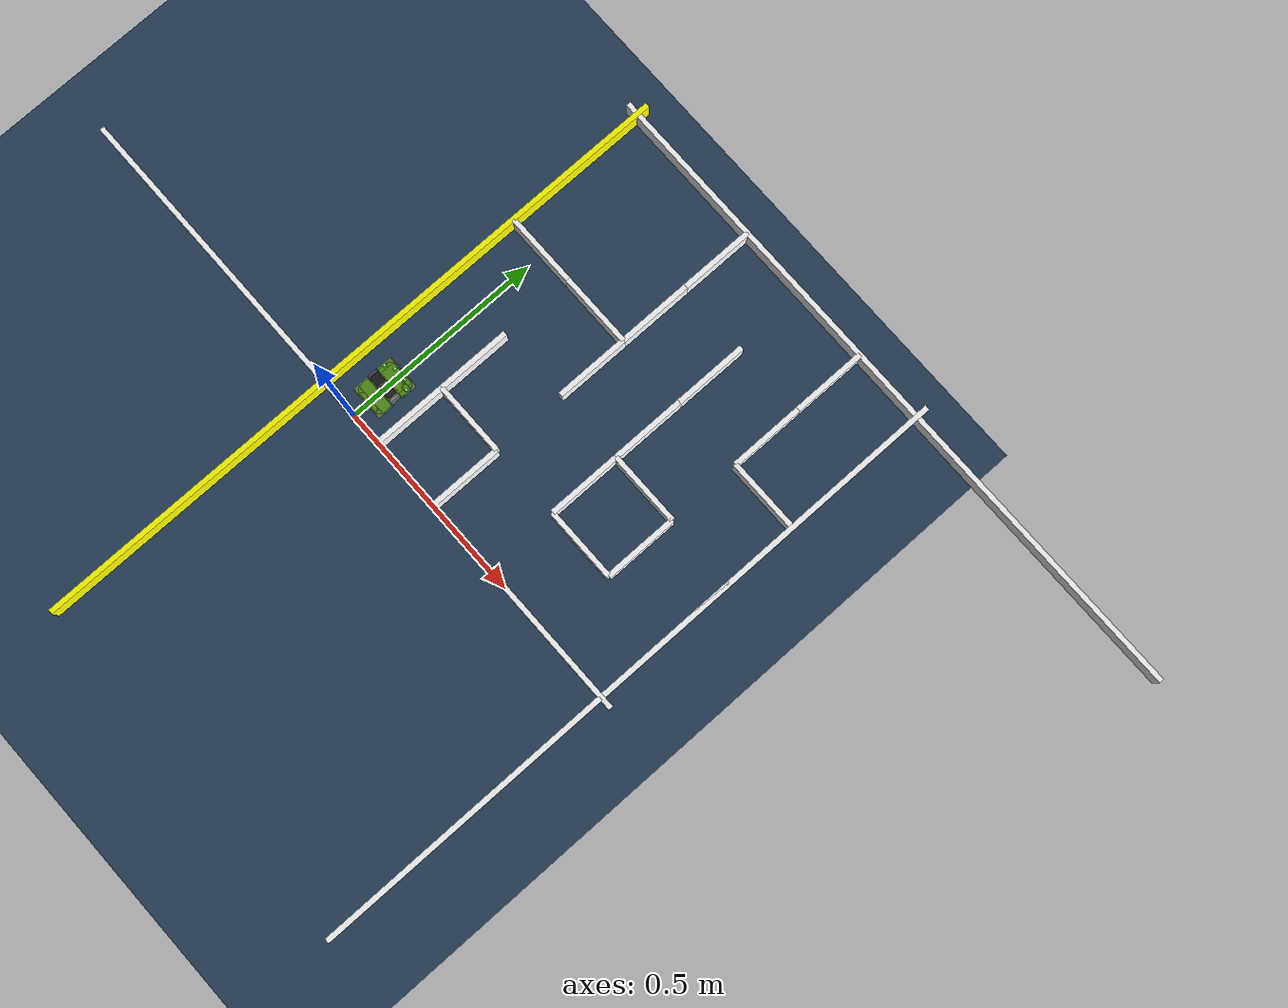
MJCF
<mujoco>
<compiler angle="degree" coordinate="local" inertiafromgeom="true" />
    <option integrator="RK4" timestep="0.001" />
    <asset>
        <texture type="skybox" builtin="gradient" rgb1="0.3 0.5 0.7" rgb2="0 0 0" width="512" height="3072"/>
        <texture type="2d" name="groundplane" builtin="checker" mark="edge" rgb1="0.2 0.3 0.4" rgb2="0.1 0.2 0.3" markrgb="0.8 0.8 0.8" width="300" height="300"/>
        <material name="groundplane" texture="groundplane" texuniform="true" texrepeat="5 5" reflectance="0.2"/>
    </asset>

    <worldbody>
        <light diffuse=".5 .5 .5" pos="0 0 10" dir="0 0 -1"/>
        <geom type="plane" size="1 1 .01" material="groundplane"/>

         <body pos="0.0 0.09 0.007" euler="0 0 90">
            <freejoint />
            <body name="torso">
                <geom name="mein_body1" type="box" friction="0.0 0.0 0.0" size="0.05 0.03 0.0008" rgba="0.05 0.4 0.15 1" pos="0 0 0.002" mass="4.65e-3"/>
                <geom name="mein_body_chip1" type="box" friction="0.0 0.0 0.0" size="0.00707 0.00707 0.0008" rgba="0.05 0.4 0.15 1" pos="0.04 0.03 0.002" euler="0 0 45" mass="4.65e-3"/>
                <geom name="mein_body_chip2" type="box" friction="0.0 0.0 0.0" size="0.00707 0.00707 0.0008" rgba="0.05 0.4 0.15 1" pos="0.04 -0.03 0.002" euler="0 0 45" mass="4.65e-3"/>
                <geom name="mein_body_chip3" type="box" friction="0.0 0.0 0.0" size="0.00707 0.00707 0.0008" rgba="0.05 0.4 0.15 1" pos="-0.04 0.03 0.002" euler="0 0 45" mass="4.65e-3"/>
                <geom name="mein_body_chip4" type="box" friction="0.0 0.0 0.0" size="0.00707 0.00707 0.0008" rgba="0.05 0.4 0.15 1" pos="-0.04 -0.03 0.002" euler="0 0 45" mass="4.65e-3"/>
                <geom name="mein_body4" type="box" friction="0.0 0.0 0.0" size="0.013 0.04 0.0008"  rgba="0.05 0.4 0.15 1" pos="-0.027 0 0.002" mass="4.65e-3"/>
                <geom name="mein_body5" type="box" friction="0.0 0.0 0.0" size="0.013 0.04 0.0008"  rgba="0.05 0.4 0.15 1" pos="0.027 0 0.002" mass="4.65e-3"/>
                <!--接触判定領域（この中に入ってるgeomが接触すると，センサ値としてその値を取得できる）-->
                <site name = "hit_box1" type = "box" size = "0.02 0.043 0.00078" pos="0.033 0 0.003" rgba="1 1 0 0.3"/>
                <site name = "hit_box2" type = "box" size = "0.02 0.043 0.00078" pos="-0.033 0 0.003" rgba="1 1 0 0.3"/>
            </body>

            <site name="sensor_left_front" type="box" size="0.003 0.003 0.003" pos="0.031 0.036 0.01" zaxis="1 0 0.01" rgba=".5 1 .5 1"/>
              <!-- zaxisの３つめ　0.1でちょい上向き -->
            <site name="sensor_left_side" type="box" size="0.003 0.003 0.003" pos="0.043 0.016 0.01" zaxis="0.25 1 0" rgba=".5 1 .5 1"/>
            <site name="sensor_right_front" type="box" size="0.003 0.003 0.003" pos="0.031 -0.036 0.01" zaxis="1 0 0.01" rgba=".5 1 .5 1"/>
            <site name="sensor_right_side" type="box" size="0.003 0.003 0.003" pos="0.043 -0.016 0.01" zaxis="0.25 -1 0" rgba=".5 1 .5 1"/>
            <site name="accerometer" type="sphere" size="0.001 0.001" pos="0 0 0.0"/>
            <site name="gyro" type="box" size="0.001 0.001 0.001" pos="0 0 0"/>
            <site name="velocimeter" type="box" size="0.001 0.001 0.001" pos="0 0 0"/>

             <body name="left wheel" pos="-0.0 0.036 0.0135" zaxis="0 1 0">
                <joint name="left wheel joint" type="hinge" axis="0 0 1" limited="false" damping='9.6e-5' />
                <geom name="left_wheel" type="cylinder" size="0.0135 0.0035" friction="1.0 0 0"  rgba=".3 .3 0.3 1" mass="5e-3"/>
                <site type="box" size = "0.0012 0.008 0.004" rgba=".5 1 .5 1"/>
            </body>

            <body name="right wheel" pos="-0.0 -0.036 0.0135" zaxis="0 1 0">
                <joint name="right wheel joint" type="hinge" axis="0 0 1" limited="false" damping='9.6e-5' />
                <geom type="cylinder" size="0.0135 0.0035" friction="1.0 0 0" mass="5e-3"/> #直径27mmのタイヤ
                <site type="box" size = "0.0012 0.008 0.004" rgba=".5 1 .5 1"/>
            </body>

            <body name="motorbox1" pos="0 -0.018 0.0135" >
                <geom type="box" size="0.0117 0.0135 0.0117" rgba="0.1 0.1 0.1 1" mass="50e-3"/>
            </body>

            <body name="motorbox2" pos="0 0.018 0.0135">
                <geom type="box" size="0.0117 0.0135 0.0117" rgba="0.1 0.1 0.1 1" mass="50e-3"/>
            </body>

            <!--トラッキングカメラを装着-->
            <camera name="camera_name" mode="track" pos="-0.4 0 0.8" euler="0 -30 -90" fovy="60"/>

        </body>
        <!--ベース板-->
        <body name="base_plate" pos="0.72 0.81 0.006">
            <geom type="plane" mass="0.1" size="0.861 0.861 0.006" rgba="0.2 0.2 0.2 1" friction="0.0 0.0 0.0"/>
        </body>
        <body name="wall1" pos="0 0 0.025"  euler="0 0 0">
            <body pos="0 0 -0.0005">
                <geom type="box" mass="0.1" size="0.84 0.006 0.0245" rgba="1 1 1 1"/>
            </body>
        </body>

        <body name="wall4" pos="0.81 0.09 0.025"  euler="0 0 90">
            <body pos="0 0 -0.0005">
                <geom type="box" mass="0.1" size="0.84 0.006 0.0245" rgba="1 1 1 1"/>
            </body>
        </body>
        <body name="wall5" pos="0.81 0.27 0.025" euler="0 0 90">
            <body pos="0 0 -0.0005">
                <geom type="box" mass="0.1" size="0.09 0.006 0.0245" rgba="1 1 1 1"/>
            </body>
        </body>

        <body name="wall7" pos="-0.090 0.09 0.025"  euler="0 0 90">
            <body pos="0 0 -0.0005">
                <geom type="box" mass="0.1" size="0.84 0.006 0.0245" rgba="1 1 0 1"/>#################################################
            </body>
        </body>
        <body name="wallqqq" pos="0.72 0.9 0.025" euler="0 0 0">
            <body pos="0 0 -0.0005">
                <geom type="box" mass="0.1" size="0.84 0.006 0.0245" rgba="1 1 1 1"/>
            </body>
        </body>

            <!--ここまで外の壁，ここから中の壁-->
        <body name="wall13" pos="0.09 0.09 0.025" euler="0 0 90">
            <body pos="0 0 -0.0005">
                <geom type="box" mass="0.1" size="0.09 0.006 0.0245" rgba="1 1 1 1"/>
            </body>

        </body>
        <body name="wallsdss13" pos="0.09 0.27 0.025" euler="0 0 90">
            <body pos="0 0 -0.0005">
                <geom type="box" mass="0.1" size="0.09 0.006 0.0245" rgba="1 1 1 1"/>
            </body>

        </body>

        <body name="wall14" pos="0.27 0.45 0.025" euler="0 0 90">
            <body pos="0 0 -0.0005">
                <geom type="box" mass="0.1" size="0.09 0.006 0.0245" rgba="1 1 1 1"/>
            </body>

        </body>

        <body name="wall15" pos="0.18 0.18 0.025" euler="0 0 0">
            <body pos="0 0 -0.0005">
                <geom type="box" mass="0.1" size="0.09 0.006 0.0245" rgba="1 1 1 1"/>
            </body>

        </body>

        <body name="wall16" pos="0.27 0.09 0.025" euler="0 0 90">
            <body pos="0 0 -0.0005">
                <geom type="box" mass="0.1" size="0.09 0.006 0.0245" rgba="1 1 1 1"/>
            </body>

        </body>
        <body name="wallaaaa13" pos="0.0 0.54 0.025" euler="0 0 0">
            <body pos="0 0 -0.0005">
                <geom type="box" mass="0.1" size="0.09 0.006 0.0245" rgba="1 1 1 1"/>
            </body>

        </body>
        <body name="wallaaasssxa13" pos="0.18 0.54 0.025" euler="0 0 0">
            <body pos="0 0 -0.0005">
                <geom type="box" mass="0.1" size="0.09 0.006 0.0245" rgba="1 1 1 1"/>
            </body>

        </body>
        <body name="allsssq16" pos="0.27 0.63 0.025" euler="0 0 90">
            <body pos="0 0 -0.0005">
                <geom type="box" mass="0.1" size="0.09 0.006 0.0245" rgba="1 1 1 1"/>
            </body>

            </body>

        <body name="wsspq16" pos="0.63 0.81 0.025" euler="0 0 90">
            <body pos="0 0 -0.0005">
                <geom type="box" mass="0.1" size="0.09 0.006 0.0245" rgba="1 1 1 1"/>
            </body>

            </body>
            <body name="allsszsq16" pos="0.27 0.81 0.025" euler="0 0 90">
            <body pos="0 0 -0.0005">
                <geom type="box" mass="0.1" size="0.09 0.006 0.0245" rgba="1 1 1 1"/>
            </body>

            </body>

        <body name="wsspyuq16" pos="0.72 0.54 0.025" euler="0 0 0">
            <body pos="0 0 -0.0005">
                <geom type="box" mass="0.1" size="0.09 0.006 0.0245" rgba="1 1 1 1"/>
            </body>

            </body>
            <body name="wsspyxxzsuq16" pos="0.63 0.63 0.025" euler="0 0 90">
            <body pos="0 0 -0.0005">
                <geom type="box" mass="0.1" size="0.09 0.006 0.0245" rgba="1 1 1 1"/>
            </body>

            </body>
        <body name="oiouq16" pos="0.45 0.63 0.025" euler="0 0 90">
            <body pos="0 0 -0.0005">
                <geom type="box" mass="0.1" size="0.09 0.006 0.0245" rgba="1 1 1 1"/>
            </body>

            </body>
        <body name="oizsouq16" pos="0.45 0.45 0.025" euler="0 0 90">
            <body pos="0 0 -0.0005">
                <geom type="box" mass="0.1" size="0.09 0.006 0.0245" rgba="1 1 1 1"/>
            </body>

            </body>
        <body name="oisdeq16" pos="0.45 0.27 0.025" euler="0 0 90">
            <body pos="0 0 -0.0005">
                <geom type="box" mass="0.1" size="0.09 0.006 0.0245" rgba="1 1 1 1"/>
            </body>

            </body>
        <body name="oaahq16" pos="0.63 0.27 0.025" euler="0 0 90">
            <body pos="0 0 -0.0005">
                <geom type="box" mass="0.1" size="0.09 0.006 0.0245" rgba="1 1 1 1"/>
            </body>

            </body>
        <body name="wsstytq16" pos="0.54 0.18 0.025" euler="0 0 0">
            <body pos="0 0 -0.0005">
                <geom type="box" mass="0.1" size="0.09 0.006 0.0245" rgba="1 1 1 1"/>
            </body>

            </body>
        <body name="wsdfretq16" pos="0.54 0.36 0.025" euler="0 0 0">
            <body pos="0 0 -0.0005">
                <geom type="box" mass="0.1" size="0.09 0.006 0.0245" rgba="1 1 1 1"/>
            </body>

            </body>

    </worldbody>

    <actuator>
        <motor name="right" joint="right wheel joint" gear="9.0e-3" ctrllimited="true" ctrlrange="-3 3"/> ctrlrangeで入力の値の範囲を決められる
        <motor name="left"  joint="left wheel joint"  gear="9.0e-3" ctrllimited="true" ctrlrange="-3 3"/>
    </actuator>

    <sensor>
        <rangefinder name="LF" site="sensor_left_front" cutoff="0.3"/>
        <rangefinder name="LS" site="sensor_left_side" cutoff="0.3"/>
        <rangefinder name="RF" site="sensor_right_front" cutoff="0.3"/>
        <rangefinder name="RS" site="sensor_right_side" cutoff="0.3"/>
        <touch name = "HB1" site = "hit_box1"/>
        <touch name = "HB2" site = "hit_box2"/>
        <accelerometer name="Accel" site="accerometer"/>
        <gyro name="Gyro" site="gyro" noise="0.001"/>
        <velocimeter name="Veloci" site="velocimeter"/>
    </sensor>
</mujoco>
